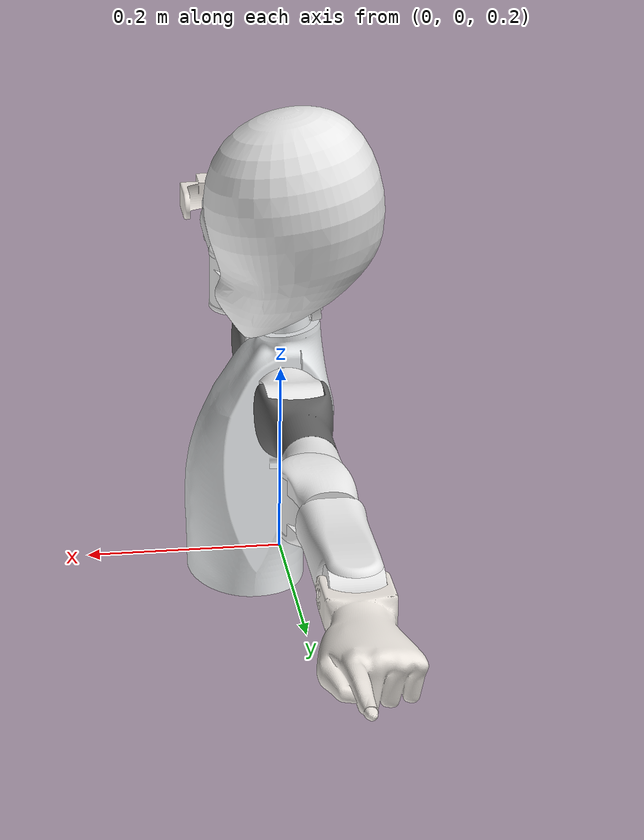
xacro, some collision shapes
<?xml version="1.0"?>
<!-- GENERATED by lite_description.workflow from Onshape CAD. Do not edit by hand. Regenerate: lite-description-generate lite_dummy -->
<robot xmlns:xacro="http://www.ros.org/wiki/xacro" name="lite_dummy">
  <xacro:arg name="use_mock_hardware" default="true"/>
  <xacro:arg name="sim_mujoco" default="false"/>
  <xacro:arg name="can_interface_left" default="can0"/>
  <xacro:arg name="can_interface_right" default="can1"/>
  <xacro:arg name="calibration_file" default=""/>

  <xacro:include filename="$(find lite_description)/robots/lite_dummy/xacro/lite_dummy.description.xacro"/>
  <xacro:include filename="$(find lite_description)/robots/lite_dummy/xacro/lite_dummy.ros2_control.xacro"/>

  <xacro:lite_dummy_description/>

  <xacro:lite_dummy_ros2_control
    use_mock_hardware="$(arg use_mock_hardware)"
    sim_mujoco="$(arg sim_mujoco)"
    can_interface_left="$(arg can_interface_left)"
    can_interface_right="$(arg can_interface_right)"
    calibration_file="$(arg calibration_file)"/>
</robot>

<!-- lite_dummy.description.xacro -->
<!-- GENERATED by lite_description.workflow from Onshape CAD. Do not edit by hand. Regenerate: lite-description-generate lite_dummy -->
<robot xmlns:xacro="http://www.ros.org/wiki/xacro">
  <xacro:macro name="lite_dummy_description" params="mesh_root:=package://lite_description/robots/lite_dummy/meshes/visual">
    <link name="base_link" />
    <joint name="base_link_to_chest" type="fixed">
      <parent link="base_link" />
      <child link="chest" />
      <origin xyz="0 0 0" rpy="0 0 0" />
    </joint>
    <!-- GENERATED by lite_description.workflow from Onshape CAD. Do not edit by hand. Regenerate: lite-description-generate lite_dummy -->
    <link name="chest">
      <inertial>
        <origin xyz="0.0229755 1.89075e-06 0.301247" rpy="0 0 0" />
        <mass value="4.241" />
        <inertia ixx="0.0293981" ixy="-3.33035e-07" ixz="0.00371359" iyy="0.0293132" iyz="-2.47e-10" izz="0.0103245" />
      </inertial>
      <!-- Part chest_parts -->
      <collision>
        <origin xyz="0.025 -0 0.28" rpy="0.226893 0 -1.5708" />
        <geometry>
          <cylinder length="0.16" radius="0.053" />
        </geometry>
      </collision>
      <collision>
        <origin xyz="0.015 -0.04 0.32" rpy="0.226893 -0.174533 -1.5708" />
        <geometry>
          <box size="0.04 0.08 0.18" />
        </geometry>
      </collision>
      <collision>
        <origin xyz="0.015 0.04 0.32" rpy="0.226893 0.174533 -1.5708" />
        <geometry>
          <box size="0.04 0.08 0.18" />
        </geometry>
      </collision>
      <visual>
        <origin xyz="0.0229755 1.89075e-06 0.301247" rpy="0 -0 0" />
        <geometry>
          <mesh filename="${mesh_root}/chest_visual.stl" />
        </geometry>
        <material name="chest_parts_material">
          <color rgba="0.914357 0.926071 0.933099 1" />
        </material>
      </visual>
    </link>
    <!-- Link left_shoulder_pitch -->
    <link name="left_shoulder_pitch">
      <inertial>
        <origin xyz="-6.27e-10 -0.00168619 -0.00682299" rpy="0 0 0" />
        <mass value="0.375" />
        <inertia ixx="0.000232695" ixy="7e-12" ixz="2e-12" iyy="0.000233203" iyz="-1.40823e-05" izz="0.000199827" />
      </inertial>
      <!-- Part left_shoulder_pitch_parts -->
      <visual>
        <origin xyz="-6.27e-10 -0.00168619 -0.00682299" rpy="1.39626 -0 0" />
        <geometry>
          <mesh filename="${mesh_root}/left_shoulder_pitch_visual.stl" />
        </geometry>
        <material name="left_shoulder_pitch_parts_material">
          <color rgba="0.933333 0.933333 0.933333 1" />
        </material>
      </visual>
    </link>
    <!-- Link left_shoulder_roll -->
    <link name="left_shoulder_roll">
      <inertial>
        <origin xyz="-2.61641e-06 0.0788959 1.66238e-07" rpy="0 0 0" />
        <mass value="0.42" />
        <inertia ixx="0.000535525" ixy="-6.1419e-08" ixz="-2.1731e-08" iyy="0.000205463" iyz="2.851e-09" izz="0.000505367" />
      </inertial>
      <!-- Part left_shoulder_roll_parts -->
      <visual>
        <origin xyz="-2.61641e-06 0.0788959 1.66238e-07" rpy="0 -1.5708 0" />
        <geometry>
          <mesh filename="${mesh_root}/left_shoulder_roll_visual.stl" />
        </geometry>
        <material name="left_shoulder_roll_parts_material">
          <color rgba="0.392063 0.392063 0.392063 1" />
        </material>
      </visual>
    </link>
    <!-- Link left_shoulder_yaw -->
    <link name="left_shoulder_yaw">
      <inertial>
        <origin xyz="0.00515648 -2.4401e-08 -0.0554418" rpy="0 0 0" />
        <mass value="0.43" />
        <inertia ixx="0.000496689" ixy="-9.91e-10" ixz="4.80325e-05" iyy="0.000501106" iyz="1.69e-10" izz="0.000221419" />
      </inertial>
      <!-- Part left_shoulder_yaw_parts -->
      <collision>
        <origin xyz="-0 0 0.06" rpy="-3.14159 -0 1.5708" />
        <geometry>
          <cylinder length="0.12" radius="0.035" />
        </geometry>
      </collision>
      <visual>
        <origin xyz="0.00515648 -2.4401e-08 -0.0554418" rpy="-1.5708 0 0" />
        <geometry>
          <mesh filename="${mesh_root}/left_shoulder_yaw_visual.stl" />
        </geometry>
        <material name="left_shoulder_yaw_parts_material">
          <color rgba="0.933333 0.933333 0.933333 1" />
        </material>
      </visual>
    </link>
    <!-- Link left_elbow_pitch -->
    <link name="left_elbow_pitch">
      <inertial>
        <origin xyz="-0.00846207 0.0260402 3.13818e-06" rpy="0 0 0" />
        <mass value="0.11" />
        <inertia ixx="0.0001179" ixy="8.13297e-06" ixz="-2.733e-09" iyy="9.39355e-05" iyz="6.064e-09" izz="8.0933e-05" />
      </inertial>
      <!-- Part left_elbow_pitch_parts -->
      <visual>
        <origin xyz="-0.00846207 0.0260402 3.13818e-06" rpy="0 -0 -0" />
        <geometry>
          <mesh filename="${mesh_root}/left_elbow_pitch_visual.stl" />
        </geometry>
        <material name="left_elbow_pitch_parts_material">
          <color rgba="0.933333 0.933333 0.933333 1" />
        </material>
      </visual>
    </link>
    <!-- Link left_wrist_yaw -->
    <link name="left_wrist_yaw">
      <inertial>
        <origin xyz="-2.258e-07 0.000140958 -0.0577988" rpy="0 0 0" />
        <mass value="0.54" />
        <inertia ixx="0.000826137" ixy="-8.13e-10" ixz="-1.64e-10" iyy="0.0008175" iyz="-8.16302e-06" izz="0.000268203" />
      </inertial>
      <!-- Part left_wrist_yaw_parts -->
      <collision>
        <origin xyz="0 -0 -0.04" rpy="0 -0 -3.14159" />
        <geometry>
          <cylinder length="0.19" radius="0.03" />
        </geometry>
      </collision>
      <visual>
        <origin xyz="-2.258e-07 0.000140958 -0.0577988" rpy="-1.5708 -0 0" />
        <geometry>
          <mesh filename="${mesh_root}/left_wrist_yaw_visual.stl" />
        </geometry>
        <material name="left_wrist_yaw_parts_material">
          <color rgba="0.933333 0.933333 0.933333 1" />
        </material>
      </visual>
    </link>
    <!-- Link left_wrist_roll -->
    <link name="left_wrist_roll">
      <inertial>
        <origin xyz="3.48e-10 1e-12 -2.12e-10" rpy="0 0 0" />
        <mass value="0.25" />
        <inertia ixx="7.92687e-05" ixy="0" ixz="0" iyy="9.19125e-05" iyz="-6.7e-11" izz="9.04076e-05" />
      </inertial>
      <!-- Part left_wrist_roll_parts -->
      <visual>
        <origin xyz="3.48e-10 1e-12 -2.12e-10" rpy="-0 -0 -0" />
        <geometry>
          <mesh filename="${mesh_root}/left_wrist_roll_visual.stl" />
        </geometry>
        <material name="left_wrist_roll_parts_material">
          <color rgba="0.933333 0.933333 0.933333 1" />
        </material>
      </visual>
    </link>
    <!-- Link left_hand -->
    <link name="left_hand">
      <inertial>
        <origin xyz="0.0044138 0.1008 0.00606018" rpy="0 0 0" />
        <mass value="0.167493" />
        <inertia ixx="0.000456305" ixy="-6.09198e-07" ixz="-6.11506e-07" iyy="9.83135e-05" iyz="-4.35308e-05" izz="0.000407599" />
      </inertial>
      <!-- Part left_hand_parts -->
      <collision>
        <origin xyz="-0.007 0.194 0.0225" rpy="1.5708 1.5708 0" />
        <geometry>
          <cylinder length="0.06" radius="0.006" />
        </geometry>
      </collision>
      <collision>
        <origin xyz="0.01 0.1 0.0005" rpy="1.5708 1.5708 0" />
        <geometry>
          <cylinder length="0.04" radius="0.035" />
        </geometry>
      </collision>
      <visual>
        <origin xyz="0.0044138 0.1008 0.00606018" rpy="-0 -1.5708 0" />
        <geometry>
          <mesh filename="${mesh_root}/left_hand_visual.stl" />
        </geometry>
        <material name="left_hand_parts_material">
          <color rgba="0.935303 0.913041 0.886642 1" />
        </material>
      </visual>
    </link>
    <!-- Frame left_finger2_tip (dummy link + fixed joint) -->
    <link name="left_finger2_tip">
      <origin xyz="0 0 0" rpy="0 -0 0" />
      <inertial>
        <origin xyz="0 0 0" rpy="0 0 0" />
        <mass value="1e-9" />
        <inertia ixx="0" ixy="0" ixz="0" iyy="0" iyz="0" izz="0" />
      </inertial>
    </link>
    <joint name="left_finger2_tip_frame" type="fixed">
      <origin xyz="-0.007 0.225 0.0225" rpy="-1.5708 0 1.5708" />
      <parent link="left_hand" />
      <child link="left_finger2_tip" />
      <axis xyz="0 0 0" />
    </joint>
    <!-- Joint from left_wrist_roll to left_hand -->
    <joint name="left_wrist_pitch" type="revolute">
      <origin xyz="-0 0 -0" rpy="0 1.5708 0" />
      <parent link="left_wrist_roll" />
      <child link="left_hand" />
      <axis xyz="0 0 1" />
      <limit effort="5.5" velocity="100" lower="-0.785398" upper="0.785398" />
      <joint_properties friction="0.1" />
    </joint>
    <!-- Joint from left_wrist_yaw to left_wrist_roll -->
    <joint name="left_wrist_roll" type="revolute">
      <origin xyz="-0 0 -0.135" rpy="-1.5708 0 -0" />
      <parent link="left_wrist_yaw" />
      <child link="left_wrist_roll" />
      <axis xyz="0 0 1" />
      <limit effort="5.5" velocity="100" lower="-0.698132" upper="0.698132" />
      <joint_properties friction="0.1" />
    </joint>
    <!-- Joint from left_elbow_pitch to left_wrist_yaw -->
    <joint name="left_wrist_yaw" type="revolute">
      <origin xyz="-0.01 0.055 0" rpy="1.5708 0 -0" />
      <parent link="left_elbow_pitch" />
      <child link="left_wrist_yaw" />
      <axis xyz="0 0 1" />
      <limit effort="5.5" velocity="100" lower="-1.5708" upper="1.5708" />
      <joint_properties friction="0.1" />
    </joint>
    <!-- Joint from left_shoulder_yaw to left_elbow_pitch -->
    <joint name="left_elbow_pitch" type="revolute">
      <origin xyz="0.01 0 -0.08" rpy="-1.5708 0 0" />
      <parent link="left_shoulder_yaw" />
      <child link="left_elbow_pitch" />
      <axis xyz="0 0 1" />
      <limit effort="14" velocity="100" lower="-2.35619" upper="0" />
      <joint_properties friction="0.1" />
    </joint>
    <!-- Joint from left_shoulder_roll to left_shoulder_yaw -->
    <joint name="left_shoulder_yaw" type="revolute">
      <origin xyz="0 0.12 0" rpy="1.5708 -1.5708 0" />
      <parent link="left_shoulder_roll" />
      <child link="left_shoulder_yaw" />
      <axis xyz="0 0 1" />
      <limit effort="14" velocity="100" lower="-1.5708" upper="1.5708" />
      <joint_properties friction="0.1" />
    </joint>
    <!-- Joint from left_shoulder_pitch to left_shoulder_roll -->
    <joint name="left_shoulder_roll" type="revolute">
      <origin xyz="-0 -0 0" rpy="1.5708 0.174533 1.5708" />
      <parent link="left_shoulder_pitch" />
      <child link="left_shoulder_roll" />
      <axis xyz="0 0 1" />
      <limit effort="14" velocity="100" lower="-1.5708" upper="1.91986" />
      <joint_properties friction="0.1" />
    </joint>
    <!-- Joint from chest to left_shoulder_pitch -->
    <joint name="left_shoulder_pitch" type="revolute">
      <origin xyz="0 0.09 0.39" rpy="-1.39626 0 -0" />
      <parent link="chest" />
      <child link="left_shoulder_pitch" />
      <axis xyz="0 0 1" />
      <limit effort="17" velocity="100" lower="-3.14159" upper="0.785398" />
      <joint_properties friction="0.1" />
    </joint>
    <!-- Link right_shoulder_pitch -->
    <link name="right_shoulder_pitch">
      <inertial>
        <origin xyz="6.27e-10 -0.00168619 0.00682299" rpy="0 0 0" />
        <mass value="0.375" />
        <inertia ixx="0.000232695" ixy="-7e-12" ixz="2e-12" iyy="0.000233203" iyz="1.40823e-05" izz="0.000199827" />
      </inertial>
      <!-- Part right_shoulder_pitch_parts -->
      <visual>
        <origin xyz="6.27e-10 -0.00168619 0.00682299" rpy="1.74533 -0 0" />
        <geometry>
          <mesh filename="${mesh_root}/right_shoulder_pitch_visual.stl" />
        </geometry>
        <material name="right_shoulder_pitch_parts_material">
          <color rgba="0.933333 0.933333 0.933333 1" />
        </material>
      </visual>
    </link>
    <!-- Link right_shoulder_roll -->
    <link name="right_shoulder_roll">
      <inertial>
        <origin xyz="4.38085e-05 0.0789688 1.65449e-07" rpy="0 0 0" />
        <mass value="0.42073" />
        <inertia ixx="0.000536871" ixy="-6.62745e-07" ixz="2.1721e-08" iyy="0.000205929" iyz="3.24e-09" izz="0.000507074" />
      </inertial>
      <!-- Part right_shoulder_roll_parts -->
      <visual>
        <origin xyz="4.38085e-05 0.0789688 1.65449e-07" rpy="3.14159 -1.5708 0" />
        <geometry>
          <mesh filename="${mesh_root}/right_shoulder_roll_visual.stl" />
        </geometry>
        <material name="right_shoulder_roll_parts_material">
          <color rgba="0.393003 0.393003 0.393003 1" />
        </material>
      </visual>
    </link>
    <!-- Link right_shoulder_yaw -->
    <link name="right_shoulder_yaw">
      <inertial>
        <origin xyz="0.00515641 2.57303e-07 -0.0554411" rpy="0 0 0" />
        <mass value="0.43" />
        <inertia ixx="0.000496702" ixy="1.276e-09" ixz="4.80336e-05" iyy="0.000501118" iyz="-5.348e-09" izz="0.000221419" />
      </inertial>
      <!-- Part right_shoulder_yaw_parts -->
      <collision>
        <origin xyz="-0 0 0.06" rpy="-3.14159 0 1.5708" />
        <geometry>
          <cylinder length="0.12" radius="0.035" />
        </geometry>
      </collision>
      <visual>
        <origin xyz="0.00515641 2.57303e-07 -0.0554411" rpy="1.5708 -0 0" />
        <geometry>
          <mesh filename="${mesh_root}/right_shoulder_yaw_visual.stl" />
        </geometry>
        <material name="right_shoulder_yaw_parts_material">
          <color rgba="0.933333 0.933333 0.933333 1" />
        </material>
      </visual>
    </link>
    <!-- Link right_elbow_pitch -->
    <link name="right_elbow_pitch">
      <inertial>
        <origin xyz="-0.00846033 0.0260389 8.87366e-07" rpy="0 0 0" />
        <mass value="0.11" />
        <inertia ixx="0.000117906" ixy="8.13657e-06" ixz="6.607e-09" iyy="9.3938e-05" iyz="-1.534e-09" izz="8.0934e-05" />
      </inertial>
      <!-- Part right_elbow_pitch_parts -->
      <visual>
        <origin xyz="-0.00846033 0.0260389 8.87366e-07" rpy="3.14159 -0 -0" />
        <geometry>
          <mesh filename="${mesh_root}/right_elbow_pitch_visual.stl" />
        </geometry>
        <material name="right_elbow_pitch_parts_material">
          <color rgba="0.933333 0.933333 0.933333 1" />
        </material>
      </visual>
    </link>
    <!-- Link right_wrist_yaw -->
    <link name="right_wrist_yaw">
      <inertial>
        <origin xyz="1.36083e-07 0.000140746 -0.0578009" rpy="0 0 0" />
        <mass value="0.54" />
        <inertia ixx="0.000826154" ixy="4.54e-10" ixz="5.783e-09" iyy="0.000817475" iyz="-8.15888e-06" izz="0.000268185" />
      </inertial>
      <!-- Part right_wrist_yaw_parts -->
      <collision>
        <origin xyz="0 0 -0.04" rpy="0 -0 -3.14159" />
        <geometry>
          <cylinder length="0.19" radius="0.03" />
        </geometry>
      </collision>
      <visual>
        <origin xyz="1.36083e-07 0.000140746 -0.0578009" rpy="1.5708 -0 0" />
        <geometry>
          <mesh filename="${mesh_root}/right_wrist_yaw_visual.stl" />
        </geometry>
        <material name="right_wrist_yaw_parts_material">
          <color rgba="0.933333 0.933333 0.933333 1" />
        </material>
      </visual>
    </link>
    <!-- Link right_wrist_roll -->
    <link name="right_wrist_roll">
      <inertial>
        <origin xyz="4.084e-09 -2e-12 -2.02e-10" rpy="0 0 0" />
        <mass value="0.25" />
        <inertia ixx="7.92688e-05" ixy="-0" ixz="0" iyy="9.19094e-05" iyz="2.493e-09" izz="9.04084e-05" />
      </inertial>
      <!-- Part right_wrist_roll_parts -->
      <visual>
        <origin xyz="4.084e-09 -2e-12 -2.02e-10" rpy="3.14159 -0 -0" />
        <geometry>
          <mesh filename="${mesh_root}/right_wrist_roll_visual.stl" />
        </geometry>
        <material name="right_wrist_roll_parts_material">
          <color rgba="0.933333 0.933333 0.933333 1" />
        </material>
      </visual>
    </link>
    <!-- Link right_hand -->
    <link name="right_hand">
      <inertial>
        <origin xyz="-0.00441379 0.100801 0.0060602" rpy="0 0 0" />
        <mass value="0.167493" />
        <inertia ixx="0.000456304" ixy="6.09364e-07" ixz="6.11187e-07" iyy="9.83137e-05" iyz="-4.35308e-05" izz="0.000407598" />
      </inertial>
      <!-- Part right_hand_parts -->
      <collision>
        <origin xyz="0.007 0.194 0.0225" rpy="1.5708 -1.5708 0" />
        <geometry>
          <cylinder length="0.06" radius="0.006" />
        </geometry>
      </collision>
      <collision>
        <origin xyz="-0.01 0.1 0.0005" rpy="1.5708 -1.5708 0" />
        <geometry>
          <cylinder length="0.04" radius="0.035" />
        </geometry>
      </collision>
      <visual>
        <origin xyz="-0.00441379 0.100801 0.0060602" rpy="3.14159 -1.5708 0" />
        <geometry>
          <mesh filename="${mesh_root}/right_hand_visual.stl" />
        </geometry>
        <material name="right_hand_parts_material">
          <color rgba="0.935303 0.913041 0.886642 1" />
        </material>
      </visual>
    </link>
    <!-- Frame right_finger2_tip (dummy link + fixed joint) -->
    <link name="right_finger2_tip">
      <origin xyz="0 0 0" rpy="0 -0 0" />
      <inertial>
        <origin xyz="0 0 0" rpy="0 0 0" />
        <mass value="1e-9" />
        <inertia ixx="0" ixy="0" ixz="0" iyy="0" iyz="0" izz="0" />
      </inertial>
    </link>
    <joint name="right_finger2_tip_frame" type="fixed">
      <origin xyz="0.007 0.225 0.0225" rpy="1.5708 0 1.5708" />
      <parent link="right_hand" />
      <child link="right_finger2_tip" />
      <axis xyz="0 0 0" />
    </joint>
    <!-- Joint from right_wrist_roll to right_hand -->
    <joint name="right_wrist_pitch" type="revolute">
      <origin xyz="-0 -0 -0" rpy="0 1.5708 0" />
      <parent link="right_wrist_roll" />
      <child link="right_hand" />
      <axis xyz="0 0 1" />
      <limit effort="5.5" velocity="100" lower="-0.785398" upper="0.785398" />
      <joint_properties friction="0.1" />
    </joint>
    <!-- Joint from right_wrist_yaw to right_wrist_roll -->
    <joint name="right_wrist_roll" type="revolute">
      <origin xyz="-0 0 -0.135" rpy="-1.5708 0 0" />
      <parent link="right_wrist_yaw" />
      <child link="right_wrist_roll" />
      <axis xyz="0 0 1" />
      <limit effort="5.5" velocity="100" lower="-0.698132" upper="0.698132" />
      <joint_properties friction="0.1" />
    </joint>
    <!-- Joint from right_elbow_pitch to right_wrist_yaw -->
    <joint name="right_wrist_yaw" type="revolute">
      <origin xyz="-0.01 0.055 -0" rpy="1.5708 0 0" />
      <parent link="right_elbow_pitch" />
      <child link="right_wrist_yaw" />
      <axis xyz="0 0 1" />
      <limit effort="5.5" velocity="100" lower="-1.5708" upper="1.5708" />
      <joint_properties friction="0.1" />
    </joint>
    <!-- Joint from right_shoulder_yaw to right_elbow_pitch -->
    <joint name="right_elbow_pitch" type="revolute">
      <origin xyz="0.01 0 -0.08" rpy="-1.5708 -0 0" />
      <parent link="right_shoulder_yaw" />
      <child link="right_elbow_pitch" />
      <axis xyz="0 0 1" />
      <limit effort="14" velocity="100" lower="-2.35619" upper="0" />
      <joint_properties friction="0.1" />
    </joint>
    <!-- Joint from right_shoulder_roll to right_shoulder_yaw -->
    <joint name="right_shoulder_yaw" type="revolute">
      <origin xyz="-0 0.12 -0" rpy="1.5708 -1.5708 0" />
      <parent link="right_shoulder_roll" />
      <child link="right_shoulder_yaw" />
      <axis xyz="0 0 1" />
      <limit effort="14" velocity="100" lower="-1.5708" upper="1.5708" />
      <joint_properties friction="0.1" />
    </joint>
    <!-- Joint from right_shoulder_pitch to right_shoulder_roll -->
    <joint name="right_shoulder_roll" type="revolute">
      <origin xyz="0 0 0" rpy="-1.5708 0.174533 -1.5708" />
      <parent link="right_shoulder_pitch" />
      <child link="right_shoulder_roll" />
      <axis xyz="0 0 1" />
      <limit effort="14" velocity="100" lower="-1.91986" upper="1.5708" />
      <joint_properties friction="0.1" />
    </joint>
    <!-- Joint from chest to right_shoulder_pitch -->
    <joint name="right_shoulder_pitch" type="revolute">
      <origin xyz="-0 -0.09 0.39" rpy="-1.74533 -0 -0" />
      <parent link="chest" />
      <child link="right_shoulder_pitch" />
      <axis xyz="0 0 1" />
      <limit effort="17" velocity="100" lower="-3.14159" upper="0.785398" />
      <joint_properties friction="0.1" />
    </joint>
    <!-- Link neck_yaw -->
    <link name="neck_yaw">
      <inertial>
        <origin xyz="-0 0 0.03" rpy="0 0 0" />
        <mass value="0.0779115" />
        <inertia ixx="1.55823e-05" ixy="-0" ixz="-0" iyy="2.40227e-05" iyz="-0" izz="2.40227e-05" />
      </inertial>
      <!-- Part neck_yaw_parts -->
      <visual>
        <origin xyz="0 0 0.03" rpy="-0 0 -0" />
        <geometry>
          <mesh filename="${mesh_root}/neck_yaw_visual.stl" />
        </geometry>
        <material name="neck_yaw_parts_material">
          <color rgba="0.933333 0.933333 0.933333 1" />
        </material>
      </visual>
    </link>
    <!-- Link neck_roll -->
    <link name="neck_roll">
      <inertial>
        <origin xyz="0 0.03 0" rpy="0 0 0" />
        <mass value="0.0779115" />
        <inertia ixx="1.55823e-05" ixy="-0" ixz="-0" iyy="2.40227e-05" iyz="0" izz="2.40227e-05" />
      </inertial>
      <!-- Part neck_roll_parts -->
      <visual>
        <origin xyz="0 0.03 0" rpy="-1.5708 -1.5708 0" />
        <geometry>
          <mesh filename="${mesh_root}/neck_roll_visual.stl" />
        </geometry>
        <material name="neck_roll_parts_material">
          <color rgba="0.933333 0.933333 0.933333 1" />
        </material>
      </visual>
    </link>
    <!-- Link head -->
    <link name="head">
      <inertial>
        <origin xyz="0.00134973 0.0584846 -5.43e-10" rpy="0 0 0" />
        <mass value="4.7098" />
        <inertia ixx="0.0192792" ixy="-0.00180799" ixz="-7.2e-11" iyy="0.0157942" iyz="-3e-11" izz="0.0201095" />
      </inertial>
      <!-- Part head_parts -->
      <collision>
        <origin xyz="-0 0.05 -0" rpy="-1.5708 -1.5708 0" />
        <geometry>
          <cylinder length="0.03" radius="0.09" />
        </geometry>
      </collision>
      <visual>
        <origin xyz="0.00134973 0.0584846 -5.43e-10" rpy="1.5708 -0 -3.14159" />
        <geometry>
          <mesh filename="${mesh_root}/head_visual.stl" />
        </geometry>
        <material name="head_parts_material">
          <color rgba="0.933333 0.933333 0.933333 1" />
        </material>
      </visual>
    </link>
    <!-- Joint from neck_roll to head -->
    <joint name="neck_pitch" type="revolute">
      <origin xyz="0 0.03 -0" rpy="0 1.5708 0" />
      <parent link="neck_roll" />
      <child link="head" />
      <axis xyz="0 0 1" />
      <limit effort="10" velocity="100" lower="-0.523599" upper="0.523599" />
      <joint_properties friction="0.1" />
    </joint>
    <!-- Joint from neck_yaw to neck_roll -->
    <joint name="neck_roll" type="revolute">
      <origin xyz="0 -0 0.03" rpy="1.5708 0 1.5708" />
      <parent link="neck_yaw" />
      <child link="neck_roll" />
      <axis xyz="0 0 1" />
      <limit effort="10" velocity="100" lower="-0.523599" upper="0.523599" />
      <joint_properties friction="0.1" />
    </joint>
    <!-- Joint from chest to neck_yaw -->
    <joint name="neck_yaw" type="revolute">
      <origin xyz="-0.01 -0 0.45" rpy="0 -0 -0" />
      <parent link="chest" />
      <child link="neck_yaw" />
      <axis xyz="0 0 1" />
      <limit effort="10" velocity="100" lower="-0.785398" upper="0.785398" />
      <joint_properties friction="0.1" />
    </joint>
  </xacro:macro>
</robot>
